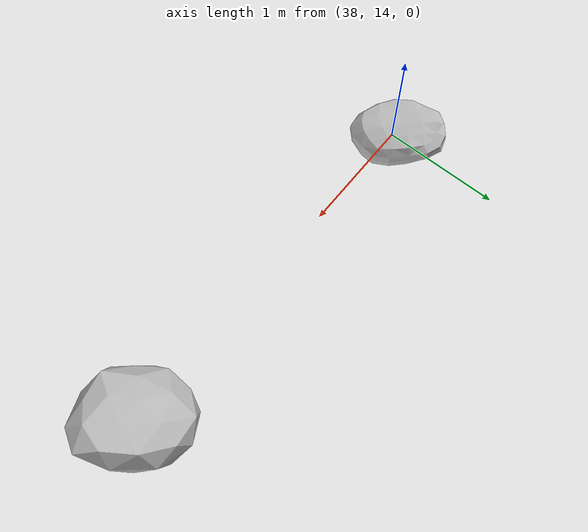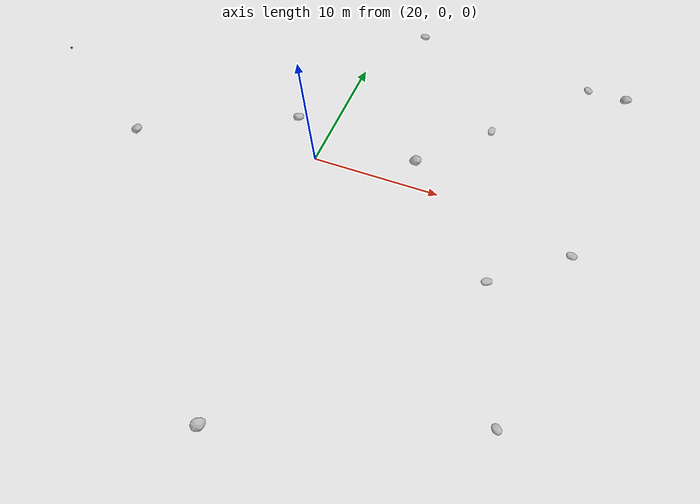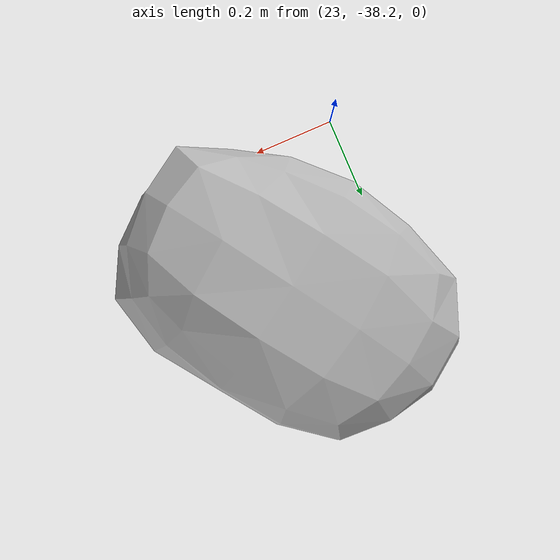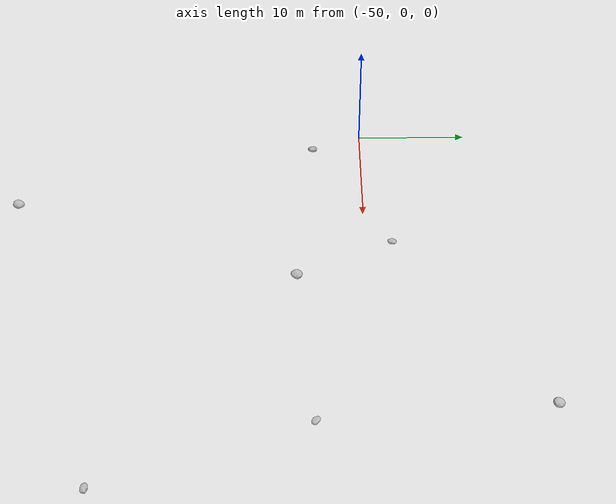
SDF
<sdf version="1.6">
 <world name="default">
  <light name="sun" type="directional">
   <pose>0 0 10 0 -0 0</pose>
   <diffuse>0.8 0.8 0.8 1</diffuse>
   <specular>0.2 0.2 0.2 1</specular>
   <attenuation>
    <range>1000</range>
    <constant>0.9</constant>
    <linear>0.01</linear>
    <quadratic>0.001</quadratic>
   </attenuation>
   <direction>-0.5 0.1 -0.9</direction>
  </light>
  <physics name="default_physics" default="0" type="ode">
   <max_step_size>0.001</max_step_size>
   <real_time_factor>1</real_time_factor>
   <real_time_update_rate>1000</real_time_update_rate>
  </physics>
  <scene>
   <ambient>0.2 0.5 0.5 1</ambient>
   <background>0.2 0.5 0.5 1</background>
   <shadows>1</shadows>
   <fog><color>0.2 0.5 0.5 1</color><type>linear</type><start>1</start><end>15</end><density>0.1</density></fog>
  </scene>
  <spherical_coordinates>
   <surface_model>EARTH_WGS84</surface_model>
   <latitude_deg>0</latitude_deg>
   <longitude_deg>0</longitude_deg>
   <elevation>0</elevation>
   <heading_deg>0</heading_deg>
  </spherical_coordinates>
  <gravity>0 0 -9.8</gravity>
  <magnetic_field>6e-06 2.3e-05 -4.2e-05</magnetic_field>
  <atmosphere type="adiabatic"/>
  <include><pose>0 0 5 0.0 1.20 0.79</pose><static>0</static><uri>model://movable_camera</uri></include>
  <model name="RockSet_1.0_static">
   <static>1</static>
   <link name="link">
    <inertial><mass>10</mass></inertial>
    <collision name="collision">
     <geometry><mesh><uri>model://RockSet_1/meshes/RockSet.dae</uri><scale>1 1 1</scale></mesh></geometry>
    </collision>
    <visual name="visual">
     <geometry><mesh><uri>model://RockSet_1/meshes/RockSet.dae</uri><scale>1 1 1</scale></mesh></geometry>
    </visual>
   </link>
   <pose>30.2228 41.1971 0.296169 2.79472 0.26903 -2.90601</pose>
  </model>
  <model name="RockSet_1.1_static">
   <static>1</static>
   <link name="link">
    <inertial><mass>10</mass></inertial>
    <collision name="collision">
     <geometry><mesh><uri>model://RockSet_1/meshes/RockSet.dae</uri><scale>1 1 1</scale></mesh></geometry>
    </collision>
    <visual name="visual">
     <geometry><mesh><uri>model://RockSet_1/meshes/RockSet.dae</uri><scale>1 1 1</scale></mesh></geometry>
    </visual>
   </link>
   <pose>5.63122 -2.30611 0.296167 2.96318 0.399543 2.8745</pose>
  </model>
  <model name="RockSet_1.2_static">
   <static>1</static>
   <link name="link">
    <inertial><mass>10</mass></inertial>
    <collision name="collision">
     <geometry><mesh><uri>model://RockSet_1/meshes/RockSet.dae</uri><scale>1 1 1</scale></mesh></geometry>
    </collision>
    <visual name="visual">
     <geometry><mesh><uri>model://RockSet_1/meshes/RockSet.dae</uri><scale>1 1 1</scale></mesh></geometry>
    </visual>
   </link>
   <pose>41.2018 14.0495 0.296167 -3.0386 -0.42401 -0.454958</pose>
  </model>
  <model name="RockSet_1.3_static">
   <static>1</static>
   <link name="link">
    <inertial><mass>10</mass></inertial>
    <collision name="collision">
     <geometry><mesh><uri>model://RockSet_1/meshes/RockSet.dae</uri><scale>1 1 1</scale></mesh></geometry>
    </collision>
    <visual name="visual">
     <geometry><mesh><uri>model://RockSet_1/meshes/RockSet.dae</uri><scale>1 1 1</scale></mesh></geometry>
    </visual>
   </link>
   <pose>-25.3371 -36.3579 0.296169 -3.09885 0.433624 2.339</pose>
  </model>
  <model name="RockSet_1.4_static">
   <static>1</static>
   <link name="link">
    <inertial><mass>10</mass></inertial>
    <collision name="collision">
     <geometry><mesh><uri>model://RockSet_1/meshes/RockSet.dae</uri><scale>1 1 1</scale></mesh></geometry>
    </collision>
    <visual name="visual">
     <geometry><mesh><uri>model://RockSet_1/meshes/RockSet.dae</uri><scale>1 1 1</scale></mesh></geometry>
    </visual>
   </link>
   <pose>-53.365 76.6832 -3880.69 -1.73308 -0.575984 -0.918094</pose>
  </model>
  <model name="RockSet_1.5_static">
   <static>1</static>
   <link name="link">
    <inertial><mass>10</mass></inertial>
    <collision name="collision">
     <geometry><mesh><uri>model://RockSet_1/meshes/RockSet.dae</uri><scale>1 1 1</scale></mesh></geometry>
    </collision>
    <visual name="visual">
     <geometry><mesh><uri>model://RockSet_1/meshes/RockSet.dae</uri><scale>1 1 1</scale></mesh></geometry>
    </visual>
   </link>
   <pose>-20.0095 13.8962 0.302647 -3.03118 0.378669 1.42274</pose>
  </model>
  <model name="RockSet_1.6_static">
   <static>1</static>
   <link name="link">
    <inertial><mass>10</mass></inertial>
    <collision name="collision">
     <geometry><mesh><uri>model://RockSet_1/meshes/RockSet.dae</uri><scale>1 1 1</scale></mesh></geometry>
    </collision>
    <visual name="visual">
     <geometry><mesh><uri>model://RockSet_1/meshes/RockSet.dae</uri><scale>1 1 1</scale></mesh></geometry>
    </visual>
   </link>
   <pose>27.375 2.28066 0.296168 2.90148 0.367032 3.03919</pose>
  </model>
  <model name="RockSet_1.7_static">
   <static>1</static>
   <link name="link">
    <inertial><mass>10</mass></inertial>
    <collision name="collision">
     <geometry><mesh><uri>model://RockSet_1/meshes/RockSet.dae</uri><scale>1 1 1</scale></mesh></geometry>
    </collision>
    <visual name="visual">
     <geometry><mesh><uri>model://RockSet_1/meshes/RockSet.dae</uri><scale>1 1 1</scale></mesh></geometry>
    </visual>
   </link>
   <pose>-14.5126 30.4569 0.299051 -2.90863 0.273166 2.67646</pose>
  </model>
  <model name="RockSet_1.8_static">
   <static>1</static>
   <link name="link">
    <inertial><mass>10</mass></inertial>
    <collision name="collision">
     <geometry><mesh><uri>model://RockSet_1/meshes/RockSet.dae</uri><scale>1 1 1</scale></mesh></geometry>
    </collision>
    <visual name="visual">
     <geometry><mesh><uri>model://RockSet_1/meshes/RockSet.dae</uri><scale>1 1 1</scale></mesh></geometry>
    </visual>
   </link>
   <pose>-41.4107 -30.8221 0.296162 -2.79305 0.266786 1.49727</pose>
  </model>
  <model name="RockSet_1.9_static">
   <static>1</static>
   <link name="link">
    <inertial><mass>10</mass></inertial>
    <collision name="collision">
     <geometry><mesh><uri>model://RockSet_1/meshes/RockSet.dae</uri><scale>1 1 1</scale></mesh></geometry>
    </collision>
    <visual name="visual">
     <geometry><mesh><uri>model://RockSet_1/meshes/RockSet.dae</uri><scale>1 1 1</scale></mesh></geometry>
    </visual>
   </link>
   <pose>-48.2086 -4.46215 0.296169 -3.01765 -0.418677 -0.403836</pose>
  </model>
  <model name="RockSet_1.10_static">
   <static>1</static>
   <link name="link">
    <inertial><mass>10</mass></inertial>
    <collision name="collision">
     <geometry><mesh><uri>model://RockSet_1/meshes/RockSet.dae</uri><scale>1 1 1</scale></mesh></geometry>
    </collision>
    <visual name="visual">
     <geometry><mesh><uri>model://RockSet_1/meshes/RockSet.dae</uri><scale>1 1 1</scale></mesh></geometry>
    </visual>
   </link>
   <pose>35.1912 -23.2313 0.296168 -2.75138 -0.19879 0.421964</pose>
  </model>
  <model name="RockSet_1.11_static">
   <static>1</static>
   <link name="link">
    <inertial><mass>10</mass></inertial>
    <collision name="collision">
     <geometry><mesh><uri>model://RockSet_1/meshes/RockSet.dae</uri><scale>1 1 1</scale></mesh></geometry>
    </collision>
    <visual name="visual">
     <geometry><mesh><uri>model://RockSet_1/meshes/RockSet.dae</uri><scale>1 1 1</scale></mesh></geometry>
    </visual>
   </link>
   <pose>17.0453 3.24448 0.296168 -3.02492 0.420655 2.16091</pose>
  </model>
  <model name="RockSet_1.12_static">
   <static>1</static>
   <link name="link">
    <inertial><mass>10</mass></inertial>
    <collision name="collision">
     <geometry><mesh><uri>model://RockSet_1/meshes/RockSet.dae</uri><scale>1 1 1</scale></mesh></geometry>
    </collision>
    <visual name="visual">
     <geometry><mesh><uri>model://RockSet_1/meshes/RockSet.dae</uri><scale>1 1 1</scale></mesh></geometry>
    </visual>
   </link>
   <pose>22.2861 -21.2362 0.296158 -2.71142 -0.070769 0.716759</pose>
  </model>
  <model name="RockSet_1.13_static">
   <static>1</static>
   <link name="link">
    <inertial><mass>10</mass></inertial>
    <collision name="collision">
     <geometry><mesh><uri>model://RockSet_1/meshes/RockSet.dae</uri><scale>1 1 1</scale></mesh></geometry>
    </collision>
    <visual name="visual">
     <geometry><mesh><uri>model://RockSet_1/meshes/RockSet.dae</uri><scale>1 1 1</scale></mesh></geometry>
    </visual>
   </link>
   <pose>-32.8492 -5.87233 0.296167 2.77237 -0.236654 -1.72719</pose>
  </model>
  <model name="RockSet_2.0_static">
   <static>1</static>
   <link name="link">
    <inertial><mass>10</mass></inertial>
    <collision name="collision">
     <geometry><mesh><uri>model://RockSet_2/meshes/RockSet.dae</uri><scale>1 1 1</scale></mesh></geometry>
    </collision>
    <visual name="visual">
     <geometry><mesh><uri>model://RockSet_2/meshes/RockSet.dae</uri><scale>1 1 1</scale></mesh></geometry>
    </visual>
   </link>
   <pose>39.2684 -15.2853 0.238788 -3.05969 -0.089142 -0.751421</pose>
  </model>
  <model name="RockSet_2.1_static">
   <static>1</static>
   <link name="link">
    <inertial><mass>10</mass></inertial>
    <collision name="collision">
     <geometry><mesh><uri>model://RockSet_2/meshes/RockSet.dae</uri><scale>1 1 1</scale></mesh></geometry>
    </collision>
    <visual name="visual">
     <geometry><mesh><uri>model://RockSet_2/meshes/RockSet.dae</uri><scale>1 1 1</scale></mesh></geometry>
    </visual>
   </link>
   <pose>35.6596 -5.83693 0.1813 0.081694 -0.002444 0.577575</pose>
  </model>
  <model name="RockSet_2.2_static">
   <static>1</static>
   <link name="link">
    <inertial><mass>10</mass></inertial>
    <collision name="collision">
     <geometry><mesh><uri>model://RockSet_2/meshes/RockSet.dae</uri><scale>1 1 1</scale></mesh></geometry>
    </collision>
    <visual name="visual">
     <geometry><mesh><uri>model://RockSet_2/meshes/RockSet.dae</uri><scale>1 1 1</scale></mesh></geometry>
    </visual>
   </link>
   <pose>40.6226 -1.8582 0.181291 0.065084 -0.049497 -0.04175</pose>
  </model>
  <model name="RockSet_2.3_static">
   <static>1</static>
   <link name="link">
    <inertial><mass>10</mass></inertial>
    <collision name="collision">
     <geometry><mesh><uri>model://RockSet_2/meshes/RockSet.dae</uri><scale>1 1 1</scale></mesh></geometry>
    </collision>
    <visual name="visual">
     <geometry><mesh><uri>model://RockSet_2/meshes/RockSet.dae</uri><scale>1 1 1</scale></mesh></geometry>
    </visual>
   </link>
   <pose>38.061 14.1045 0.181469 0.042835 0.023616 2.41244</pose>
  </model>
  <model name="RockSet_2.4_static">
   <static>1</static>
   <link name="link">
    <inertial><mass>10</mass></inertial>
    <collision name="collision">
     <geometry><mesh><uri>model://RockSet_2/meshes/RockSet.dae</uri><scale>1 1 1</scale></mesh></geometry>
    </collision>
    <visual name="visual">
     <geometry><mesh><uri>model://RockSet_2/meshes/RockSet.dae</uri><scale>1 1 1</scale></mesh></geometry>
    </visual>
   </link>
   <pose>-18.8319 -4.34767 0.181462 0.045745 0.006627 2.49085</pose>
  </model>
  <model name="RockSet_2.5_static">
   <static>1</static>
   <link name="link">
    <inertial><mass>10</mass></inertial>
    <collision name="collision">
     <geometry><mesh><uri>model://RockSet_2/meshes/RockSet.dae</uri><scale>1 1 1</scale></mesh></geometry>
    </collision>
    <visual name="visual">
     <geometry><mesh><uri>model://RockSet_2/meshes/RockSet.dae</uri><scale>1 1 1</scale></mesh></geometry>
    </visual>
   </link>
   <pose>-8.53314 -33.0683 0.181518 0.009251 -0.03265 2.22806</pose>
  </model>
  <model name="RockSet_2.6_static">
   <static>1</static>
   <link name="link">
    <inertial><mass>10</mass></inertial>
    <collision name="collision">
     <geometry><mesh><uri>model://RockSet_2/meshes/RockSet.dae</uri><scale>1 1 1</scale></mesh></geometry>
    </collision>
    <visual name="visual">
     <geometry><mesh><uri>model://RockSet_2/meshes/RockSet.dae</uri><scale>1 1 1</scale></mesh></geometry>
    </visual>
   </link>
   <pose>25.1001 48.1305 0.238799 3.08797 -0.108489 -1.95648</pose>
  </model>
  <model name="RockSet_2.7_static">
   <static>1</static>
   <link name="link">
    <inertial><mass>10</mass></inertial>
    <collision name="collision">
     <geometry><mesh><uri>model://RockSet_2/meshes/RockSet.dae</uri><scale>1 1 1</scale></mesh></geometry>
    </collision>
    <visual name="visual">
     <geometry><mesh><uri>model://RockSet_2/meshes/RockSet.dae</uri><scale>1 1 1</scale></mesh></geometry>
    </visual>
   </link>
   <pose>-13.6161 -20.6762 0.181291 0.069464 -0.043149 0.053856</pose>
  </model>
  <model name="RockSet_2.8_static">
   <static>1</static>
   <link name="link">
    <inertial><mass>10</mass></inertial>
    <collision name="collision">
     <geometry><mesh><uri>model://RockSet_2/meshes/RockSet.dae</uri><scale>1 1 1</scale></mesh></geometry>
    </collision>
    <visual name="visual">
     <geometry><mesh><uri>model://RockSet_2/meshes/RockSet.dae</uri><scale>1 1 1</scale></mesh></geometry>
    </visual>
   </link>
   <pose>23.2646 -37.8669 0.238796 -3.08258 -0.105665 -0.985777</pose>
  </model>
  <model name="RockSet_2.9_static">
   <static>1</static>
   <link name="link">
    <inertial><mass>10</mass></inertial>
    <collision name="collision">
     <geometry><mesh><uri>model://RockSet_2/meshes/RockSet.dae</uri><scale>1 1 1</scale></mesh></geometry>
    </collision>
    <visual name="visual">
     <geometry><mesh><uri>model://RockSet_2/meshes/RockSet.dae</uri><scale>1 1 1</scale></mesh></geometry>
    </visual>
   </link>
   <pose>45.3062 -44.8141 0.238795 3.02294 0.023612 3.02047</pose>
  </model>
  <model name="RockSet_2.10_static">
   <static>1</static>
   <link name="link">
    <inertial><mass>10</mass></inertial>
    <collision name="collision">
     <geometry><mesh><uri>model://RockSet_2/meshes/RockSet.dae</uri><scale>1 1 1</scale></mesh></geometry>
    </collision>
    <visual name="visual">
     <geometry><mesh><uri>model://RockSet_2/meshes/RockSet.dae</uri><scale>1 1 1</scale></mesh></geometry>
    </visual>
   </link>
   <pose>23.2542 15.5163 0.181303 -0.062571 0.05226 3.05027</pose>
  </model>
  <model name="RockSet_2.11_static">
   <static>1</static>
   <link name="link">
    <inertial><mass>10</mass></inertial>
    <collision name="collision">
     <geometry><mesh><uri>model://RockSet_2/meshes/RockSet.dae</uri><scale>1 1 1</scale></mesh></geometry>
    </collision>
    <visual name="visual">
     <geometry><mesh><uri>model://RockSet_2/meshes/RockSet.dae</uri><scale>1 1 1</scale></mesh></geometry>
    </visual>
   </link>
   <pose>-36.4687 2.38868 0.181471 0.041814 -0.025227 1.36337</pose>
  </model>
  <model name="RockSet_2.12_static">
   <static>1</static>
   <link name="link">
    <inertial><mass>10</mass></inertial>
    <collision name="collision">
     <geometry><mesh><uri>model://RockSet_2/meshes/RockSet.dae</uri><scale>1 1 1</scale></mesh></geometry>
    </collision>
    <visual name="visual">
     <geometry><mesh><uri>model://RockSet_2/meshes/RockSet.dae</uri><scale>1 1 1</scale></mesh></geometry>
    </visual>
   </link>
   <pose>31.9263 7.16433 0.181471 0.047074 -0.011841 1.68466</pose>
  </model>
  <model name="RockSet_2.13_static">
   <static>1</static>
   <link name="link">
    <inertial><mass>10</mass></inertial>
    <collision name="collision">
     <geometry><mesh><uri>model://RockSet_2/meshes/RockSet.dae</uri><scale>1 1 1</scale></mesh></geometry>
    </collision>
    <visual name="visual">
     <geometry><mesh><uri>model://RockSet_2/meshes/RockSet.dae</uri><scale>1 1 1</scale></mesh></geometry>
    </visual>
   </link>
   <pose>-29.4976 38.96 0.181453 0.011158 0.044723 -2.60567</pose>
  </model>
 </world>
</sdf>

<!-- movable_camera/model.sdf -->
<sdf version="1.5">
    <model name='movable_camera'>
      <pose frame=''>0 0 5 0.0 1.20 0.0</pose>
      <link name='link'>
        <inertial>
          <mass>0.1</mass>
          <inertia>
            <ixx>0.000166667</ixx>
            <iyy>0.000166667</iyy>
            <izz>0.000166667</izz>
            <ixy>0</ixy>
            <ixz>0</ixz>
            <iyz>0</iyz>
          </inertia>
        </inertial>
        <collision name='collision'>
          <geometry>
            <box>
              <size>0.1 0.1 0.1</size>
            </box>
          </geometry>
          <max_contacts>10</max_contacts>
          <surface>
            <contact>
              <ode/>
            </contact>
            <bounce/>
            <friction>
              <ode/>
            </friction>
          </surface>
        </collision>
        <visual name='visual'>
          <geometry>
            <box>
              <size>0.1 0.1 0.1</size>
            </box>
          </geometry>
          <material>
            <script>
              <name>Gazebo/Black</name>
            </script>
          </material>
        </visual>
        <sensor name='camera1' type='camera'>
          <camera name='__default__'>
            <horizontal_fov>2.0943</horizontal_fov>
            <image>
              <width>320</width>
	      <!-->seria 180, pero a lsd_slam no le gusta que no sea multiplo de 16, porque sea?<-->
              <height>240</height>
            </image>
            <clip>
              <near>0.1</near>
              <far>100</far>
            </clip>
            <save enabled='false'>
              <path>/home/emanuel/Descargas</path>
            </save>
          </camera>
          <always_on>1</always_on>
	  <!-- update rate no tiene que estar, jode con la
          visualizacion en la camara de la onda caustica-->
          <visualize>true</visualize>
          <plugin name='camera_controller' filename='libgazebo_ros_camera.so'>
            <alwaysOn>true</alwaysOn>
            <updateRate>30.0</updateRate>
            <cameraName>movable_camera</cameraName>
            <imageTopicName>image_raw</imageTopicName>
            <cameraInfoTopicName>camera_info</cameraInfoTopicName>
            <frameName>camera</frameName>
            <hackBaseline>0.07</hackBaseline>
            <distortionK1>0.0</distortionK1>
            <distortionK2>0.0</distortionK2>
            <distortionK3>0.0</distortionK3>
            <distortionT1>0.0</distortionT1>
            <distortionT2>0.0</distortionT2>
          </plugin>
        </sensor>
        <self_collide>0</self_collide>
        <kinematic>0</kinematic>
        <gravity>0</gravity>
      </link>
      <plugin name='object_controller' filename='libgazebo_ros_planar_move.so'>
        <commandTopic>movable_camera/cmd_vel</commandTopic>
        <odometryTopic>movable_camera/odom</odometryTopic>
        <odometryFrame>odom</odometryFrame>
        <odometryRate>20.0</odometryRate>
        <robotBaseFrame>link</robotBaseFrame>
      </plugin>
    </model>
</sdf>
